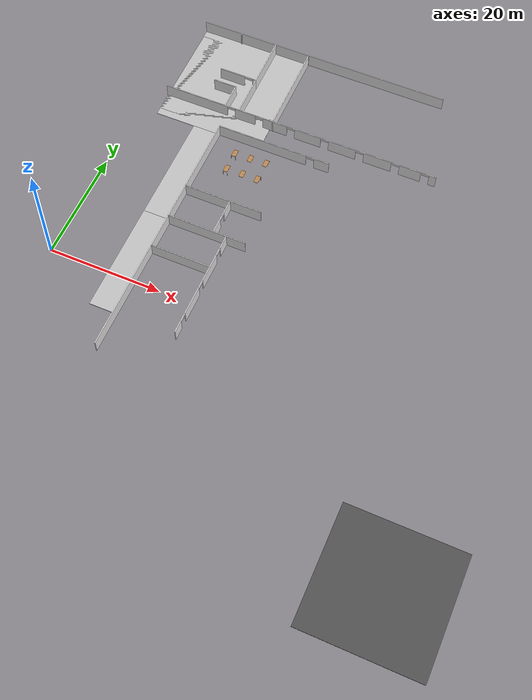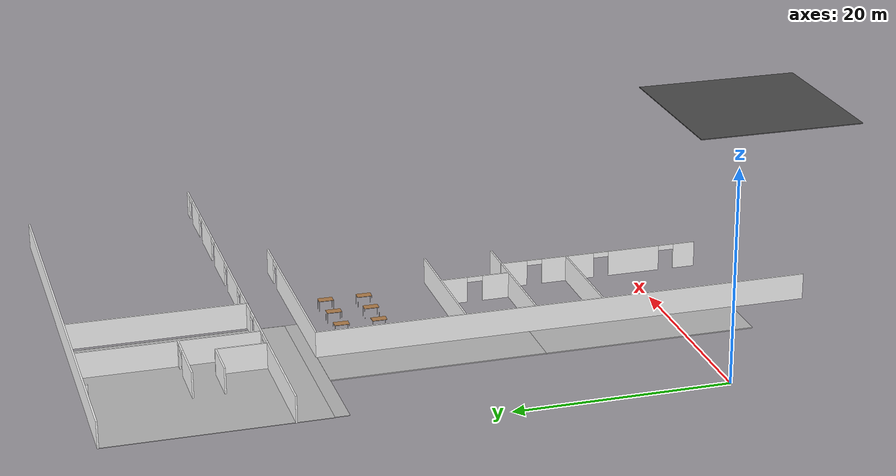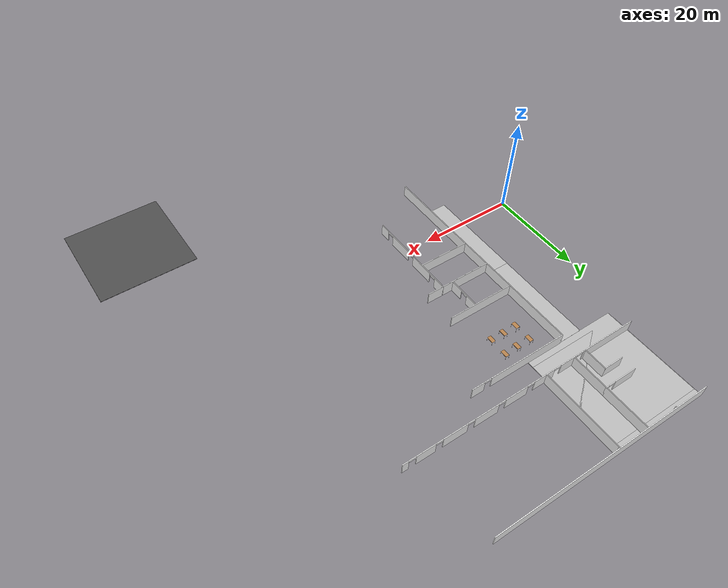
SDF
<sdf version="1.6">
 <world name="default">
  <model name="mainoffice">
   <pose>42.7555 15.4488 0 0 -0 0</pose>
   <link name="Wall_114">
    <pose>-14.0456 22.5815 0 0 -0 0</pose>
    <visual name="Wall_114_Visual_0">
     <pose>-19.5315 0 1.25 0 -0 0</pose>
     <geometry><box><size>11.937 0.15 2.5</size></box></geometry>
     <material>
      <script>
       <uri>model://office_env/materials/scripts</uri>
       <uri>model://office_env/materials/textures</uri>
       <name>wall</name>
      </script>
      <ambient>1 1 1 1</ambient>
     </material>
    </visual>
    <collision name="Wall_114_Collision_0">
     <geometry><box><size>11.937 0.15 2.5</size></box></geometry>
     <pose>-19.5315 0 1.25 0 -0 0</pose>
    </collision>
    <visual name="Wall_114_Visual_1">
     <pose>-10.1461 0 1.25 0 -0 0</pose>
     <geometry><box><size>3.83377 0.15 2.5</size></box></geometry>
     <material>
      <script>
       <uri>model://office_env/materials/scripts</uri>
       <uri>model://office_env/materials/textures</uri>
       <name>wall</name>
      </script>
      <ambient>1 1 1 1</ambient>
     </material>
    </visual>
    <collision name="Wall_114_Collision_1">
     <geometry><box><size>3.83377 0.15 2.5</size></box></geometry>
     <pose>-10.1461 0 1.25 0 -0 0</pose>
    </collision>
    <visual name="Wall_114_Visual_2">
     <pose>-4.44505 0 1.25 0 -0 0</pose>
     <geometry><box><size>4.56834 0.15 2.5</size></box></geometry>
     <material>
      <script>
       <uri>model://office_env/materials/scripts</uri>
       <uri>model://office_env/materials/textures</uri>
       <name>wall</name>
      </script>
      <ambient>1 1 1 1</ambient>
     </material>
    </visual>
    <collision name="Wall_114_Collision_2">
     <geometry><box><size>4.56834 0.15 2.5</size></box></geometry>
     <pose>-4.44505 0 1.25 0 -0 0</pose>
    </collision>
    <visual name="Wall_114_Visual_3">
     <pose>1.7851 0 1.25 0 -0 0</pose>
     <geometry><box><size>4.89198 0.15 2.5</size></box></geometry>
     <material>
      <script>
       <uri>model://office_env/materials/scripts</uri>
       <uri>model://office_env/materials/textures</uri>
       <name>wall</name>
      </script>
      <ambient>1 1 1 1</ambient>
     </material>
    </visual>
    <collision name="Wall_114_Collision_3">
     <geometry><box><size>4.89198 0.15 2.5</size></box></geometry>
     <pose>1.7851 0 1.25 0 -0 0</pose>
    </collision>
    <visual name="Wall_114_Visual_4">
     <pose>8.258 0 1.25 0 -0 0</pose>
     <geometry><box><size>5.0538 0.15 2.5</size></box></geometry>
     <material>
      <script>
       <uri>model://office_env/materials/scripts</uri>
       <uri>model://office_env/materials/textures</uri>
       <name>wall</name>
      </script>
      <ambient>1 1 1 1</ambient>
     </material>
    </visual>
    <collision name="Wall_114_Collision_4">
     <geometry><box><size>5.0538 0.15 2.5</size></box></geometry>
     <pose>8.258 0 1.25 0 -0 0</pose>
    </collision>
    <visual name="Wall_114_Visual_5">
     <pose>14.8201 0 1.25 0 -0 0</pose>
     <geometry><box><size>5.07045 0.15 2.5</size></box></geometry>
     <material>
      <script>
       <uri>model://office_env/materials/scripts</uri>
       <uri>model://office_env/materials/textures</uri>
       <name>wall</name>
      </script>
      <ambient>1 1 1 1</ambient>
     </material>
    </visual>
    <collision name="Wall_114_Collision_5">
     <geometry><box><size>5.07045 0.15 2.5</size></box></geometry>
     <pose>14.8201 0 1.25 0 -0 0</pose>
    </collision>
    <visual name="Wall_114_Visual_6">
     <pose>20.8037 0 1.25 0 -0 0</pose>
     <geometry><box><size>3.89677 0.15 2.5</size></box></geometry>
     <material>
      <script>
       <uri>model://office_env/materials/scripts</uri>
       <uri>model://office_env/materials/textures</uri>
       <name>wall</name>
      </script>
      <ambient>1 1 1 1</ambient>
     </material>
    </visual>
    <collision name="Wall_114_Collision_6">
     <geometry><box><size>3.89677 0.15 2.5</size></box></geometry>
     <pose>20.8037 0 1.25 0 -0 0</pose>
    </collision>
    <visual name="Wall_114_Visual_7">
     <pose>24.8761 0 1.25 0 -0 0</pose>
     <geometry><box><size>1.24787 0.15 2.5</size></box></geometry>
     <material>
      <script>
       <uri>model://office_env/materials/scripts</uri>
       <uri>model://office_env/materials/textures</uri>
       <name>wall</name>
      </script>
      <ambient>1 1 1 1</ambient>
     </material>
    </visual>
    <collision name="Wall_114_Collision_7">
     <geometry><box><size>1.24787 0.15 2.5</size></box></geometry>
     <pose>24.8761 0 1.25 0 -0 0</pose>
    </collision>
    <visual name="Wall_114_Visual_8">
     <pose>-12.813 0 2.25 0 -0 0</pose>
     <geometry><box><size>1.5 0.15 0.5</size></box></geometry>
     <material>
      <script>
       <uri>model://office_env/materials/scripts</uri>
       <uri>model://office_env/materials/textures</uri>
       <name>wall</name>
      </script>
      <ambient>1 1 1 1</ambient>
     </material>
    </visual>
    <collision name="Wall_114_Collision_8">
     <geometry><box><size>1.5 0.15 0.5</size></box></geometry>
     <pose>-12.813 0 2.25 0 -0 0</pose>
    </collision>
    <visual name="Wall_114_Visual_9">
     <pose>-7.47922 0 2.25 0 -0 0</pose>
     <geometry><box><size>1.5 0.15 0.5</size></box></geometry>
     <material>
      <script>
       <uri>model://office_env/materials/scripts</uri>
       <uri>model://office_env/materials/textures</uri>
       <name>wall</name>
      </script>
      <ambient>1 1 1 1</ambient>
     </material>
    </visual>
    <collision name="Wall_114_Collision_9">
     <geometry><box><size>1.5 0.15 0.5</size></box></geometry>
     <pose>-7.47922 0 2.25 0 -0 0</pose>
    </collision>
    <visual name="Wall_114_Visual_10">
     <pose>-1.41089 0 2.25 0 -0 0</pose>
     <geometry><box><size>1.5 0.15 0.5</size></box></geometry>
     <material>
      <script>
       <uri>model://office_env/materials/scripts</uri>
       <uri>model://office_env/materials/textures</uri>
       <name>wall</name>
      </script>
      <ambient>1 1 1 1</ambient>
     </material>
    </visual>
    <collision name="Wall_114_Collision_10">
     <geometry><box><size>1.5 0.15 0.5</size></box></geometry>
     <pose>-1.41089 0 2.25 0 -0 0</pose>
    </collision>
    <visual name="Wall_114_Visual_11">
     <pose>4.98109 0 2.25 0 -0 0</pose>
     <geometry><box><size>1.5 0.15 0.5</size></box></geometry>
     <material>
      <script>
       <uri>model://office_env/materials/scripts</uri>
       <uri>model://office_env/materials/textures</uri>
       <name>wall</name>
      </script>
      <ambient>1 1 1 1</ambient>
     </material>
    </visual>
    <collision name="Wall_114_Collision_11">
     <geometry><box><size>1.5 0.15 0.5</size></box></geometry>
     <pose>4.98109 0 2.25 0 -0 0</pose>
    </collision>
    <visual name="Wall_114_Visual_12">
     <pose>11.5349 0 2.25 0 -0 0</pose>
     <geometry><box><size>1.5 0.15 0.5</size></box></geometry>
     <material>
      <script>
       <uri>model://office_env/materials/scripts</uri>
       <uri>model://office_env/materials/textures</uri>
       <name>wall</name>
      </script>
      <ambient>1 1 1 1</ambient>
     </material>
    </visual>
    <collision name="Wall_114_Collision_12">
     <geometry><box><size>1.5 0.15 0.5</size></box></geometry>
     <pose>11.5349 0 2.25 0 -0 0</pose>
    </collision>
    <visual name="Wall_114_Visual_13">
     <pose>18.1054 0 2.25 0 -0 0</pose>
     <geometry><box><size>1.5 0.15 0.5</size></box></geometry>
     <material>
      <script>
       <uri>model://office_env/materials/scripts</uri>
       <uri>model://office_env/materials/textures</uri>
       <name>wall</name>
      </script>
      <ambient>1 1 1 1</ambient>
     </material>
    </visual>
    <collision name="Wall_114_Collision_13">
     <geometry><box><size>1.5 0.15 0.5</size></box></geometry>
     <pose>18.1054 0 2.25 0 -0 0</pose>
    </collision>
    <visual name="Wall_114_Visual_14">
     <pose>23.5021 0 2.25 0 -0 0</pose>
     <geometry><box><size>1.5 0.15 0.5</size></box></geometry>
     <material>
      <script>
       <uri>model://office_env/materials/scripts</uri>
       <uri>model://office_env/materials/textures</uri>
       <name>wall</name>
      </script>
      <ambient>1 1 1 1</ambient>
     </material>
    </visual>
    <collision name="Wall_114_Collision_14">
     <geometry><box><size>1.5 0.15 0.5</size></box></geometry>
     <pose>23.5021 0 2.25 0 -0 0</pose>
    </collision>
   </link>
   <link name="Wall_125">
    <collision name="Wall_125_Collision">
     <geometry><box><size>4.25 0.15 2.5</size></box></geometry>
     <pose>0 0 1.25 0 -0 0</pose>
    </collision>
    <visual name="Wall_125_Visual">
     <pose>0 0 1.25 0 -0 0</pose>
     <geometry><box><size>4.25 0.15 2.5</size></box></geometry>
     <material>
      <script>
       <uri>model://office_env/materials/scripts</uri>
       <uri>model://office_env/materials/textures</uri>
       <name>wall</name>
      </script>
      <ambient>1 1 1 1</ambient>
     </material>
    </visual>
    <pose>-30.1665 27.2379 0 0 -0 3.14159</pose>
   </link>
   <link name="Wall_128">
    <collision name="Wall_128_Collision">
     <geometry><box><size>0.25 0.15 2.5</size></box></geometry>
     <pose>0 0 1.25 0 -0 0</pose>
    </collision>
    <visual name="Wall_128_Visual">
     <pose>0 0 1.25 0 -0 0</pose>
     <geometry><box><size>0.25 0.15 2.5</size></box></geometry>
     <material>
      <script>
       <uri>model://office_env/materials/scripts</uri>
       <uri>model://office_env/materials/textures</uri>
       <name>wall</name>
      </script>
      <ambient>1 1 1 1</ambient>
     </material>
    </visual>
    <pose>-32.2165 39.1379 0 0 -0 1.5708</pose>
   </link>
   <link name="Wall_130">
    <pose>-28.8573 30.0928 0 0 -0 0</pose>
    <visual name="Wall_130_Visual_0">
     <pose>-1.12067 0 1.25 0 -0 0</pose>
     <geometry><box><size>4.75866 0.15 2.5</size></box></geometry>
     <material>
      <script>
       <uri>model://office_env/materials/scripts</uri>
       <uri>model://office_env/materials/textures</uri>
       <name>wall</name>
      </script>
      <ambient>1 1 1 1</ambient>
     </material>
    </visual>
    <collision name="Wall_130_Collision_0">
     <geometry><box><size>4.75866 0.15 2.5</size></box></geometry>
     <pose>-1.12067 0 1.25 0 -0 0</pose>
    </collision>
    <visual name="Wall_130_Visual_1">
     <pose>3.12933 0 1.25 0 -0 0</pose>
     <geometry><box><size>0.741337 0.15 2.5</size></box></geometry>
     <material>
      <script>
       <uri>model://office_env/materials/scripts</uri>
       <uri>model://office_env/materials/textures</uri>
       <name>wall</name>
      </script>
      <ambient>1 1 1 1</ambient>
     </material>
    </visual>
    <collision name="Wall_130_Collision_1">
     <geometry><box><size>0.741337 0.15 2.5</size></box></geometry>
     <pose>3.12933 0 1.25 0 -0 0</pose>
    </collision>
    <visual name="Wall_130_Visual_2">
     <pose>2.00866 0 2.25 0 -0 0</pose>
     <geometry><box><size>1.5 0.15 0.5</size></box></geometry>
     <material>
      <script>
       <uri>model://office_env/materials/scripts</uri>
       <uri>model://office_env/materials/textures</uri>
       <name>wall</name>
      </script>
      <ambient>1 1 1 1</ambient>
     </material>
    </visual>
    <collision name="Wall_130_Collision_2">
     <geometry><box><size>1.5 0.15 0.5</size></box></geometry>
     <pose>2.00866 0 2.25 0 -0 0</pose>
    </collision>
   </link>
   <link name="Wall_131">
    <collision name="Wall_131_Collision">
     <geometry><box><size>7.5 0.15 2.5</size></box></geometry>
     <pose>0 0 1.25 0 -0 0</pose>
    </collision>
    <visual name="Wall_131_Visual">
     <pose>0 0 1.25 0 -0 0</pose>
     <geometry><box><size>7.5 0.15 2.5</size></box></geometry>
     <material>
      <script>
       <uri>model://office_env/materials/scripts</uri>
       <uri>model://office_env/materials/textures</uri>
       <name>wall</name>
      </script>
      <ambient>1 1 1 1</ambient>
     </material>
    </visual>
    <pose>-25.4323 26.4178 0 0 0 -1.5708</pose>
   </link>
   <link name="Wall_133">
    <collision name="Wall_133_Collision">
     <geometry><box><size>4.75 0.15 2.5</size></box></geometry>
     <pose>0 0 1.25 0 -0 0</pose>
    </collision>
    <visual name="Wall_133_Visual">
     <pose>0 0 1.25 0 -0 0</pose>
     <geometry><box><size>4.75 0.15 2.5</size></box></geometry>
     <material>
      <script>
       <uri>model://office_env/materials/scripts</uri>
       <uri>model://office_env/materials/textures</uri>
       <name>wall</name>
      </script>
      <ambient>1 1 1 1</ambient>
     </material>
    </visual>
    <pose>-28.1164 24.9379 0 0 0 -1.5708</pose>
   </link>
   <link name="Wall_135">
    <collision name="Wall_135_Collision">
     <geometry><box><size>9.25 0.15 2.5</size></box></geometry>
     <pose>0 0 1.25 0 -0 0</pose>
    </collision>
    <visual name="Wall_135_Visual">
     <pose>0 0 1.25 0 -0 0</pose>
     <geometry><box><size>9.25 0.15 2.5</size></box></geometry>
     <material>
      <script>
       <uri>model://office_env/materials/scripts</uri>
       <uri>model://office_env/materials/textures</uri>
       <name>wall</name>
      </script>
      <ambient>1 1 1 1</ambient>
     </material>
    </visual>
    <pose>-25.4323 34.6428 0 0 -0 1.5708</pose>
   </link>
   <link name="Wall_137">
    <collision name="Wall_137_Collision">
     <geometry><box><size>16.75 0.15 2.5</size></box></geometry>
     <pose>0 0 1.25 0 -0 0</pose>
    </collision>
    <visual name="Wall_137_Visual">
     <pose>0 0 1.25 0 -0 0</pose>
     <geometry><box><size>16.75 0.15 2.5</size></box></geometry>
     <material>
      <script>
       <uri>model://office_env/materials/scripts</uri>
       <uri>model://office_env/materials/textures</uri>
       <name>wall</name>
      </script>
      <ambient>1 1 1 1</ambient>
     </material>
    </visual>
    <pose>-18.9193 30.8236 0 0 -0 1.5708</pose>
   </link>
   <link name="Wall_138">
    <collision name="Wall_138_Collision">
     <geometry><box><size>0.25 0.15 2.5</size></box></geometry>
     <pose>0 0 1.25 0 -0 0</pose>
    </collision>
    <visual name="Wall_138_Visual">
     <pose>0 0 1.25 0 -0 0</pose>
     <geometry><box><size>0.25 0.15 2.5</size></box></geometry>
     <material>
      <script>
       <uri>model://office_env/materials/scripts</uri>
       <uri>model://office_env/materials/textures</uri>
       <name>wall</name>
      </script>
      <ambient>1 1 1 1</ambient>
     </material>
    </visual>
    <pose>-18.9193 39.1736 0 0 -0 1.5708</pose>
   </link>
   <link name="Wall_35">
    <collision name="Wall_35_Collision">
     <geometry><box><size>47.25 0.15 2.5</size></box></geometry>
     <pose>0 0 1.25 0 -0 0</pose>
    </collision>
    <visual name="Wall_35_Visual">
     <pose>0 0 1.25 0 -0 0</pose>
     <geometry><box><size>47.25 0.15 2.5</size></box></geometry>
     <material>
      <script>
       <uri>model://office_env/materials/scripts</uri>
       <uri>model://office_env/materials/textures</uri>
       <name>wall</name>
      </script>
      <ambient>1 1 1 1</ambient>
     </material>
    </visual>
    <pose>-27.0991 -5.575 0 0 -0 1.5708</pose>
   </link>
   <link name="Wall_38">
    <collision name="Wall_38_Collision">
     <geometry><box><size>46.5 0.15 2.5</size></box></geometry>
     <pose>0 0 1.25 0 -0 0</pose>
    </collision>
    <visual name="Wall_38_Visual">
     <pose>0 0 1.25 0 -0 0</pose>
     <geometry><box><size>46.5 0.15 2.5</size></box></geometry>
     <material>
      <script>
       <uri>model://office_env/materials/scripts</uri>
       <uri>model://office_env/materials/textures</uri>
       <name>wall</name>
      </script>
      <ambient>1 1 1 1</ambient>
     </material>
    </visual>
    <pose>-16.2741 39.325 0 0 -0 0</pose>
   </link>
   <link name="Wall_62">
    <pose>-16.4491 -12.475 0 0 -0 1.5708</pose>
    <visual name="Wall_62_Visual_0">
     <pose>-8.77826 0 1.25 0 -0 0</pose>
     <geometry><box><size>2.19348 0.15 2.5</size></box></geometry>
     <material>
      <script>
       <uri>model://office_env/materials/scripts</uri>
       <uri>model://office_env/materials/textures</uri>
       <name>wall</name>
      </script>
      <ambient>1 1 1 1</ambient>
     </material>
    </visual>
    <collision name="Wall_62_Collision_0">
     <geometry><box><size>2.19348 0.15 2.5</size></box></geometry>
     <pose>-8.77826 0 1.25 0 -0 0</pose>
    </collision>
    <visual name="Wall_62_Visual_1">
     <pose>-3.59393 0 1.25 0 -0 0</pose>
     <geometry><box><size>5.17517 0.15 2.5</size></box></geometry>
     <material>
      <script>
       <uri>model://office_env/materials/scripts</uri>
       <uri>model://office_env/materials/textures</uri>
       <name>wall</name>
      </script>
      <ambient>1 1 1 1</ambient>
     </material>
    </visual>
    <collision name="Wall_62_Collision_1">
     <geometry><box><size>5.17517 0.15 2.5</size></box></geometry>
     <pose>-3.59393 0 1.25 0 -0 0</pose>
    </collision>
    <visual name="Wall_62_Visual_2">
     <pose>3.1331 0 1.25 0 -0 0</pose>
     <geometry><box><size>5.27889 0.15 2.5</size></box></geometry>
     <material>
      <script>
       <uri>model://office_env/materials/scripts</uri>
       <uri>model://office_env/materials/textures</uri>
       <name>wall</name>
      </script>
      <ambient>1 1 1 1</ambient>
     </material>
    </visual>
    <collision name="Wall_62_Collision_2">
     <geometry><box><size>5.27889 0.15 2.5</size></box></geometry>
     <pose>3.1331 0 1.25 0 -0 0</pose>
    </collision>
    <visual name="Wall_62_Visual_3">
     <pose>8.57377 0 1.25 0 -0 0</pose>
     <geometry><box><size>2.60246 0.15 2.5</size></box></geometry>
     <material>
      <script>
       <uri>model://office_env/materials/scripts</uri>
       <uri>model://office_env/materials/textures</uri>
       <name>wall</name>
      </script>
      <ambient>1 1 1 1</ambient>
     </material>
    </visual>
    <collision name="Wall_62_Collision_3">
     <geometry><box><size>2.60246 0.15 2.5</size></box></geometry>
     <pose>8.57377 0 1.25 0 -0 0</pose>
    </collision>
    <visual name="Wall_62_Visual_4">
     <pose>-6.93152 0 2.25 0 -0 0</pose>
     <geometry><box><size>1.5 0.15 0.5</size></box></geometry>
     <material>
      <script>
       <uri>model://office_env/materials/scripts</uri>
       <uri>model://office_env/materials/textures</uri>
       <name>wall</name>
      </script>
      <ambient>1 1 1 1</ambient>
     </material>
    </visual>
    <collision name="Wall_62_Collision_4">
     <geometry><box><size>1.5 0.15 0.5</size></box></geometry>
     <pose>-6.93152 0 2.25 0 -0 0</pose>
    </collision>
    <visual name="Wall_62_Visual_5">
     <pose>-0.256349 0 2.25 0 -0 0</pose>
     <geometry><box><size>1.5 0.15 0.5</size></box></geometry>
     <material>
      <script>
       <uri>model://office_env/materials/scripts</uri>
       <uri>model://office_env/materials/textures</uri>
       <name>wall</name>
      </script>
      <ambient>1 1 1 1</ambient>
     </material>
    </visual>
    <collision name="Wall_62_Collision_5">
     <geometry><box><size>1.5 0.15 0.5</size></box></geometry>
     <pose>-0.256349 0 2.25 0 -0 0</pose>
    </collision>
    <visual name="Wall_62_Visual_6">
     <pose>6.52254 0 2.25 0 -0 0</pose>
     <geometry><box><size>1.5 0.15 0.5</size></box></geometry>
     <material>
      <script>
       <uri>model://office_env/materials/scripts</uri>
       <uri>model://office_env/materials/textures</uri>
       <name>wall</name>
      </script>
      <ambient>1 1 1 1</ambient>
     </material>
    </visual>
    <collision name="Wall_62_Collision_6">
     <geometry><box><size>1.5 0.15 0.5</size></box></geometry>
     <pose>6.52254 0 2.25 0 -0 0</pose>
    </collision>
   </link>
   <link name="Wall_63">
    <collision name="Wall_63_Collision">
     <geometry><box><size>10.75 0.15 2.5</size></box></geometry>
     <pose>0 0 1.25 0 -0 0</pose>
    </collision>
    <visual name="Wall_63_Visual">
     <pose>0 0 1.25 0 -0 0</pose>
     <geometry><box><size>10.75 0.15 2.5</size></box></geometry>
     <material>
      <script>
       <uri>model://office_env/materials/scripts</uri>
       <uri>model://office_env/materials/textures</uri>
       <name>wall</name>
      </script>
      <ambient>1 1 1 1</ambient>
     </material>
    </visual>
    <pose>-21.7491 -2.675 0 0 -0 3.14159</pose>
   </link>
   <link name="Wall_71">
    <collision name="Wall_71_Collision">
     <geometry><box><size>10.75 0.15 2.5</size></box></geometry>
     <pose>0 0 1.25 0 -0 0</pose>
    </collision>
    <visual name="Wall_71_Visual">
     <pose>0 0 1.25 0 -0 0</pose>
     <geometry><box><size>10.75 0.15 2.5</size></box></geometry>
     <material>
      <script>
       <uri>model://office_env/materials/scripts</uri>
       <uri>model://office_env/materials/textures</uri>
       <name>wall</name>
      </script>
      <ambient>1 1 1 1</ambient>
     </material>
    </visual>
    <pose>-21.7518 -9.17769 0 0 -0 3.14159</pose>
   </link>
   <link name="Wall_75">
    <pose>-16.7991 17.975 0 0 -0 0</pose>
    <visual name="Wall_75_Visual_0">
     <pose>-2.1273 0 1.25 0 -0 0</pose>
     <geometry><box><size>16.4954 0.15 2.5</size></box></geometry>
     <material>
      <script>
       <uri>model://office_env/materials/scripts</uri>
       <uri>model://office_env/materials/textures</uri>
       <name>wall</name>
      </script>
      <ambient>1 1 1 1</ambient>
     </material>
    </visual>
    <collision name="Wall_75_Collision_0">
     <geometry><box><size>16.4954 0.15 2.5</size></box></geometry>
     <pose>-2.1273 0 1.25 0 -0 0</pose>
    </collision>
    <visual name="Wall_75_Visual_1">
     <pose>8.9977 0 1.25 0 -0 0</pose>
     <geometry><box><size>2.7546 0.15 2.5</size></box></geometry>
     <material>
      <script>
       <uri>model://office_env/materials/scripts</uri>
       <uri>model://office_env/materials/textures</uri>
       <name>wall</name>
      </script>
      <ambient>1 1 1 1</ambient>
     </material>
    </visual>
    <collision name="Wall_75_Collision_1">
     <geometry><box><size>2.7546 0.15 2.5</size></box></geometry>
     <pose>8.9977 0 1.25 0 -0 0</pose>
    </collision>
    <visual name="Wall_75_Visual_2">
     <pose>6.8704 0 2.25 0 -0 0</pose>
     <geometry><box><size>1.5 0.15 0.5</size></box></geometry>
     <material>
      <script>
       <uri>model://office_env/materials/scripts</uri>
       <uri>model://office_env/materials/textures</uri>
       <name>wall</name>
      </script>
      <ambient>1 1 1 1</ambient>
     </material>
    </visual>
    <collision name="Wall_75_Collision_2">
     <geometry><box><size>1.5 0.15 0.5</size></box></geometry>
     <pose>6.8704 0 2.25 0 -0 0</pose>
    </collision>
   </link>
   <link name="Wall_85">
    <collision name="Wall_85_Collision">
     <geometry><box><size>3.5 0.15 2.5</size></box></geometry>
     <pose>0 0 1.25 0 -0 0</pose>
    </collision>
    <visual name="Wall_85_Visual">
     <pose>0 0 1.25 0 -0 0</pose>
     <geometry><box><size>3.5 0.15 2.5</size></box></geometry>
     <material>
      <script>
       <uri>model://office_env/materials/scripts</uri>
       <uri>model://office_env/materials/textures</uri>
       <name>wall</name>
      </script>
      <ambient>1 1 1 1</ambient>
     </material>
    </visual>
    <pose>-14.7741 -2.675 0 0 -0 0</pose>
   </link>
   <link name="Wall_88">
    <collision name="Wall_88_Collision">
     <geometry><box><size>14 0.15 2.5</size></box></geometry>
     <pose>0 0 1.25 0 -0 0</pose>
    </collision>
    <visual name="Wall_88_Visual">
     <pose>0 0 1.25 0 -0 0</pose>
     <geometry><box><size>14 0.15 2.5</size></box></geometry>
     <material>
      <script>
       <uri>model://office_env/materials/scripts</uri>
       <uri>model://office_env/materials/textures</uri>
       <name>wall</name>
      </script>
      <ambient>1 1 1 1</ambient>
     </material>
    </visual>
    <pose>-20.1147 4.02546 0 0 -0 3.14159</pose>
   </link>
   <link name="Wall_90">
    <pose>-18.7887 0.663928 0 0 0 -1.5708</pose>
    <visual name="Wall_90_Visual_0">
     <pose>-2.08201 0 1.25 0 -0 0</pose>
     <geometry><box><size>2.58598 0.15 2.5</size></box></geometry>
     <material>
      <script>
       <uri>model://office_env/materials/scripts</uri>
       <uri>model://office_env/materials/textures</uri>
       <name>wall</name>
      </script>
      <ambient>1 1 1 1</ambient>
     </material>
    </visual>
    <collision name="Wall_90_Collision_0">
     <geometry><box><size>2.58598 0.15 2.5</size></box></geometry>
     <pose>-2.08201 0 1.25 0 -0 0</pose>
    </collision>
    <visual name="Wall_90_Visual_1">
     <pose>2.04299 0 1.25 0 -0 0</pose>
     <geometry><box><size>2.66402 0.15 2.5</size></box></geometry>
     <material>
      <script>
       <uri>model://office_env/materials/scripts</uri>
       <uri>model://office_env/materials/textures</uri>
       <name>wall</name>
      </script>
      <ambient>1 1 1 1</ambient>
     </material>
    </visual>
    <collision name="Wall_90_Collision_1">
     <geometry><box><size>2.66402 0.15 2.5</size></box></geometry>
     <pose>2.04299 0 1.25 0 -0 0</pose>
    </collision>
    <visual name="Wall_90_Visual_2">
     <pose>-0.039023 0 2.25 0 -0 0</pose>
     <geometry><box><size>1.5 0.15 0.5</size></box></geometry>
     <material>
      <script>
       <uri>model://office_env/materials/scripts</uri>
       <uri>model://office_env/materials/textures</uri>
       <name>wall</name>
      </script>
      <ambient>1 1 1 1</ambient>
     </material>
    </visual>
    <collision name="Wall_90_Collision_2">
     <geometry><box><size>1.5 0.15 0.5</size></box></geometry>
     <pose>-0.039023 0 2.25 0 -0 0</pose>
    </collision>
   </link>
   <static>1</static>
  </model>
  <model name="asphalt_plane">
   <static>1</static>
   <link name="link">
    <collision name="collision"><geometry><box><size>20 20 0.1</size></box></geometry></collision>
    <visual name="visual">
     <cast_shadows>0</cast_shadows>
     <geometry><box><size>20 20 0.1</size></box></geometry>
     <material>
      <script>
       <uri>model://asphalt_plane/materials/scripts</uri>
       <uri>model://asphalt_plane/materials/textures</uri>
       <name>vrc/asphalt</name>
      </script>
     </material>
    </visual>
   </link>
   <pose>70.7475 -31.5972 0 0 -0 0</pose>
  </model>
  <model name="table_3">
   <static>0</static>
   <link name="link">
    <collision name="surface">
     <pose>0 0 1 0 -0 0</pose>
     <geometry><box><size>1.5 0.8 0.03</size></box></geometry>
     <surface><friction><ode><mu>0.6</mu><mu2>0.6</mu2></ode></friction></surface>
    </collision>
    <visual name="visual1">
     <pose>0 0 1 0 -0 0</pose>
     <geometry><box><size>1.4 0.8 0.04</size></box></geometry>
     <material>
      <script><uri>file://media/materials/scripts/gazebo.material</uri><name>Gazebo/Wood</name></script>
     </material>
    </visual>
    <collision name="front_left_leg">
     <pose>0.68 0.38 0.5 0 -0 0</pose>
     <geometry><cylinder><radius>0.02</radius><length>1</length></cylinder></geometry>
    </collision>
    <visual name="front_left_leg">
     <pose>0.68 0.38 0.5 0 -0 0</pose>
     <geometry><cylinder><radius>0.02</radius><length>1</length></cylinder></geometry>
     <material>
      <script>
       <uri>model://office_env/materials/scripts</uri>
       <uri>model://office_env/materials/textures</uri>
       <name>wall</name>
      </script>
     </material>
    </visual>
    <collision name="front_right_leg">
     <pose>0.68 -0.38 0.5 0 -0 0</pose>
     <geometry><cylinder><radius>0.02</radius><length>1</length></cylinder></geometry>
    </collision>
    <visual name="front_right_leg">
     <pose>0.68 -0.38 0.5 0 -0 0</pose>
     <geometry><cylinder><radius>0.02</radius><length>1</length></cylinder></geometry>
     <material>
      <script>
       <uri>model://office_env/materials/scripts</uri>
       <uri>model://office_env/materials/textures</uri>
       <name>wall</name>
      </script>
     </material>
    </visual>
    <collision name="back_right_leg">
     <pose>-0.68 -0.38 0.5 0 -0 0</pose>
     <geometry><cylinder><radius>0.02</radius><length>1</length></cylinder></geometry>
    </collision>
    <visual name="back_right_leg">
     <pose>-0.68 -0.38 0.5 0 -0 0</pose>
     <geometry><cylinder><radius>0.02</radius><length>1</length></cylinder></geometry>
     <material>
      <script>
       <uri>model://office_env/materials/scripts</uri>
       <uri>model://office_env/materials/textures</uri>
       <name>wall</name>
      </script>
     </material>
    </visual>
    <collision name="back_left_leg">
     <pose>-0.68 0.38 0.5 0 -0 0</pose>
     <geometry><cylinder><radius>0.02</radius><length>1</length></cylinder></geometry>
    </collision>
    <visual name="back_left_leg">
     <pose>-0.68 0.38 0.5 0 -0 0</pose>
     <geometry><cylinder><radius>0.02</radius><length>1</length></cylinder></geometry>
     <material>
      <script>
       <uri>model://office_env/materials/scripts</uri>
       <uri>model://office_env/materials/textures</uri>
       <name>wall</name>
      </script>
     </material>
    </visual>
    <inertial>
     <inertia><ixx>1</ixx><ixy>0</ixy><ixz>0</ixz><iyy>1</iyy><iyz>0</iyz><izz>1</izz></inertia>
     <mass>1</mass>
    </inertial>
   </link>
   <pose>20.1295 30.0365 0.034999 0 0 -1.58064</pose>
  </model>
  <model name="table_3_clone">
   <static>0</static>
   <link name="link">
    <collision name="surface">
     <pose>0 0 1 0 -0 0</pose>
     <geometry><box><size>1.5 0.8 0.03</size></box></geometry>
     <surface><friction><ode><mu>0.6</mu><mu2>0.6</mu2></ode></friction></surface>
    </collision>
    <visual name="visual1">
     <pose>0 0 1 0 -0 0</pose>
     <geometry><box><size>1.4 0.8 0.04</size></box></geometry>
     <material>
      <script><uri>file://media/materials/scripts/gazebo.material</uri><name>Gazebo/Wood</name></script>
     </material>
    </visual>
    <collision name="front_left_leg">
     <pose>0.68 0.38 0.5 0 -0 0</pose>
     <geometry><cylinder><radius>0.02</radius><length>1</length></cylinder></geometry>
    </collision>
    <visual name="front_left_leg">
     <pose>0.68 0.38 0.5 0 -0 0</pose>
     <geometry><cylinder><radius>0.02</radius><length>1</length></cylinder></geometry>
     <material>
      <script>
       <uri>model://office_env/materials/scripts</uri>
       <uri>model://office_env/materials/textures</uri>
       <name>wall</name>
      </script>
     </material>
    </visual>
    <collision name="front_right_leg">
     <pose>0.68 -0.38 0.5 0 -0 0</pose>
     <geometry><cylinder><radius>0.02</radius><length>1</length></cylinder></geometry>
    </collision>
    <visual name="front_right_leg">
     <pose>0.68 -0.38 0.5 0 -0 0</pose>
     <geometry><cylinder><radius>0.02</radius><length>1</length></cylinder></geometry>
     <material>
      <script>
       <uri>model://office_env/materials/scripts</uri>
       <uri>model://office_env/materials/textures</uri>
       <name>wall</name>
      </script>
     </material>
    </visual>
    <collision name="back_right_leg">
     <pose>-0.68 -0.38 0.5 0 -0 0</pose>
     <geometry><cylinder><radius>0.02</radius><length>1</length></cylinder></geometry>
    </collision>
    <visual name="back_right_leg">
     <pose>-0.68 -0.38 0.5 0 -0 0</pose>
     <geometry><cylinder><radius>0.02</radius><length>1</length></cylinder></geometry>
     <material>
      <script>
       <uri>model://office_env/materials/scripts</uri>
       <uri>model://office_env/materials/textures</uri>
       <name>wall</name>
      </script>
     </material>
    </visual>
    <collision name="back_left_leg">
     <pose>-0.68 0.38 0.5 0 -0 0</pose>
     <geometry><cylinder><radius>0.02</radius><length>1</length></cylinder></geometry>
    </collision>
    <visual name="back_left_leg">
     <pose>-0.68 0.38 0.5 0 -0 0</pose>
     <geometry><cylinder><radius>0.02</radius><length>1</length></cylinder></geometry>
     <material>
      <script>
       <uri>model://office_env/materials/scripts</uri>
       <uri>model://office_env/materials/textures</uri>
       <name>wall</name>
      </script>
     </material>
    </visual>
    <inertial>
     <inertia><ixx>1</ixx><ixy>0</ixy><ixz>0</ixz><iyy>1</iyy><iyz>0</iyz><izz>1</izz></inertia>
     <mass>1</mass>
    </inertial>
   </link>
   <pose>20.1673 26.4749 0.034999 0 0 -1.58064</pose>
  </model>
  <model name="table_3_clone_clone_clone_0">
   <static>0</static>
   <link name="link">
    <collision name="surface">
     <pose>0 0 1 0 -0 0</pose>
     <geometry><box><size>1.5 0.8 0.03</size></box></geometry>
     <surface><friction><ode><mu>0.6</mu><mu2>0.6</mu2></ode></friction></surface>
    </collision>
    <visual name="visual1">
     <pose>0 0 1 0 -0 0</pose>
     <geometry><box><size>1.4 0.8 0.04</size></box></geometry>
     <material>
      <script><uri>file://media/materials/scripts/gazebo.material</uri><name>Gazebo/Wood</name></script>
     </material>
    </visual>
    <collision name="front_left_leg">
     <pose>0.68 0.38 0.5 0 -0 0</pose>
     <geometry><cylinder><radius>0.02</radius><length>1</length></cylinder></geometry>
    </collision>
    <visual name="front_left_leg">
     <pose>0.68 0.38 0.5 0 -0 0</pose>
     <geometry><cylinder><radius>0.02</radius><length>1</length></cylinder></geometry>
     <material>
      <script>
       <uri>model://office_env/materials/scripts</uri>
       <uri>model://office_env/materials/textures</uri>
       <name>wall</name>
      </script>
     </material>
    </visual>
    <collision name="front_right_leg">
     <pose>0.68 -0.38 0.5 0 -0 0</pose>
     <geometry><cylinder><radius>0.02</radius><length>1</length></cylinder></geometry>
    </collision>
    <visual name="front_right_leg">
     <pose>0.68 -0.38 0.5 0 -0 0</pose>
     <geometry><cylinder><radius>0.02</radius><length>1</length></cylinder></geometry>
     <material>
      <script>
       <uri>model://office_env/materials/scripts</uri>
       <uri>model://office_env/materials/textures</uri>
       <name>wall</name>
      </script>
     </material>
    </visual>
    <collision name="back_right_leg">
     <pose>-0.68 -0.38 0.5 0 -0 0</pose>
     <geometry><cylinder><radius>0.02</radius><length>1</length></cylinder></geometry>
    </collision>
    <visual name="back_right_leg">
     <pose>-0.68 -0.38 0.5 0 -0 0</pose>
     <geometry><cylinder><radius>0.02</radius><length>1</length></cylinder></geometry>
     <material>
      <script>
       <uri>model://office_env/materials/scripts</uri>
       <uri>model://office_env/materials/textures</uri>
       <name>wall</name>
      </script>
     </material>
    </visual>
    <collision name="back_left_leg">
     <pose>-0.68 0.38 0.5 0 -0 0</pose>
     <geometry><cylinder><radius>0.02</radius><length>1</length></cylinder></geometry>
    </collision>
    <visual name="back_left_leg">
     <pose>-0.68 0.38 0.5 0 -0 0</pose>
     <geometry><cylinder><radius>0.02</radius><length>1</length></cylinder></geometry>
     <material>
      <script>
       <uri>model://office_env/materials/scripts</uri>
       <uri>model://office_env/materials/textures</uri>
       <name>wall</name>
      </script>
     </material>
    </visual>
    <inertial>
     <inertia><ixx>1</ixx><ixy>0</ixy><ixz>0</ixz><iyy>1</iyy><iyz>0</iyz><izz>1</izz></inertia>
     <mass>1</mass>
    </inertial>
   </link>
   <pose>23.1004 26.4884 0.034999 0 0 -1.58064</pose>
  </model>
  <model name="table_3_clone_clone_clone_1">
   <static>0</static>
   <link name="link">
    <collision name="surface">
     <pose>0 0 1 0 -0 0</pose>
     <geometry><box><size>1.5 0.8 0.03</size></box></geometry>
     <surface><friction><ode><mu>0.6</mu><mu2>0.6</mu2></ode></friction></surface>
    </collision>
    <visual name="visual1">
     <pose>0 0 1 0 -0 0</pose>
     <geometry><box><size>1.4 0.8 0.04</size></box></geometry>
     <material>
      <script><uri>file://media/materials/scripts/gazebo.material</uri><name>Gazebo/Wood</name></script>
     </material>
    </visual>
    <collision name="front_left_leg">
     <pose>0.68 0.38 0.5 0 -0 0</pose>
     <geometry><cylinder><radius>0.02</radius><length>1</length></cylinder></geometry>
    </collision>
    <visual name="front_left_leg">
     <pose>0.68 0.38 0.5 0 -0 0</pose>
     <geometry><cylinder><radius>0.02</radius><length>1</length></cylinder></geometry>
     <material>
      <script>
       <uri>model://office_env/materials/scripts</uri>
       <uri>model://office_env/materials/textures</uri>
       <name>wall</name>
      </script>
     </material>
    </visual>
    <collision name="front_right_leg">
     <pose>0.68 -0.38 0.5 0 -0 0</pose>
     <geometry><cylinder><radius>0.02</radius><length>1</length></cylinder></geometry>
    </collision>
    <visual name="front_right_leg">
     <pose>0.68 -0.38 0.5 0 -0 0</pose>
     <geometry><cylinder><radius>0.02</radius><length>1</length></cylinder></geometry>
     <material>
      <script>
       <uri>model://office_env/materials/scripts</uri>
       <uri>model://office_env/materials/textures</uri>
       <name>wall</name>
      </script>
     </material>
    </visual>
    <collision name="back_right_leg">
     <pose>-0.68 -0.38 0.5 0 -0 0</pose>
     <geometry><cylinder><radius>0.02</radius><length>1</length></cylinder></geometry>
    </collision>
    <visual name="back_right_leg">
     <pose>-0.68 -0.38 0.5 0 -0 0</pose>
     <geometry><cylinder><radius>0.02</radius><length>1</length></cylinder></geometry>
     <material>
      <script>
       <uri>model://office_env/materials/scripts</uri>
       <uri>model://office_env/materials/textures</uri>
       <name>wall</name>
      </script>
     </material>
    </visual>
    <collision name="back_left_leg">
     <pose>-0.68 0.38 0.5 0 -0 0</pose>
     <geometry><cylinder><radius>0.02</radius><length>1</length></cylinder></geometry>
    </collision>
    <visual name="back_left_leg">
     <pose>-0.68 0.38 0.5 0 -0 0</pose>
     <geometry><cylinder><radius>0.02</radius><length>1</length></cylinder></geometry>
     <material>
      <script>
       <uri>model://office_env/materials/scripts</uri>
       <uri>model://office_env/materials/textures</uri>
       <name>wall</name>
      </script>
     </material>
    </visual>
    <inertial>
     <inertia><ixx>1</ixx><ixy>0</ixy><ixz>0</ixz><iyy>1</iyy><iyz>0</iyz><izz>1</izz></inertia>
     <mass>1</mass>
    </inertial>
   </link>
   <pose>23.0792 30.0448 0.034999 0 0 -1.58064</pose>
  </model>
  <model name="table_3_clone_clone_clone_3">
   <static>0</static>
   <link name="link">
    <collision name="surface">
     <pose>0 0 1 0 -0 0</pose>
     <geometry><box><size>1.5 0.8 0.03</size></box></geometry>
     <surface><friction><ode><mu>0.6</mu><mu2>0.6</mu2></ode></friction></surface>
    </collision>
    <visual name="visual1">
     <pose>0 0 1 0 -0 0</pose>
     <geometry><box><size>1.4 0.8 0.04</size></box></geometry>
     <material>
      <script><uri>file://media/materials/scripts/gazebo.material</uri><name>Gazebo/Wood</name></script>
     </material>
    </visual>
    <collision name="front_left_leg">
     <pose>0.68 0.38 0.5 0 -0 0</pose>
     <geometry><cylinder><radius>0.02</radius><length>1</length></cylinder></geometry>
    </collision>
    <visual name="front_left_leg">
     <pose>0.68 0.38 0.5 0 -0 0</pose>
     <geometry><cylinder><radius>0.02</radius><length>1</length></cylinder></geometry>
     <material>
      <script>
       <uri>model://office_env/materials/scripts</uri>
       <uri>model://office_env/materials/textures</uri>
       <name>wall</name>
      </script>
     </material>
    </visual>
    <collision name="front_right_leg">
     <pose>0.68 -0.38 0.5 0 -0 0</pose>
     <geometry><cylinder><radius>0.02</radius><length>1</length></cylinder></geometry>
    </collision>
    <visual name="front_right_leg">
     <pose>0.68 -0.38 0.5 0 -0 0</pose>
     <geometry><cylinder><radius>0.02</radius><length>1</length></cylinder></geometry>
     <material>
      <script>
       <uri>model://office_env/materials/scripts</uri>
       <uri>model://office_env/materials/textures</uri>
       <name>wall</name>
      </script>
     </material>
    </visual>
    <collision name="back_right_leg">
     <pose>-0.68 -0.38 0.5 0 -0 0</pose>
     <geometry><cylinder><radius>0.02</radius><length>1</length></cylinder></geometry>
    </collision>
    <visual name="back_right_leg">
     <pose>-0.68 -0.38 0.5 0 -0 0</pose>
     <geometry><cylinder><radius>0.02</radius><length>1</length></cylinder></geometry>
     <material>
      <script>
       <uri>model://office_env/materials/scripts</uri>
       <uri>model://office_env/materials/textures</uri>
       <name>wall</name>
      </script>
     </material>
    </visual>
    <collision name="back_left_leg">
     <pose>-0.68 0.38 0.5 0 -0 0</pose>
     <geometry><cylinder><radius>0.02</radius><length>1</length></cylinder></geometry>
    </collision>
    <visual name="back_left_leg">
     <pose>-0.68 0.38 0.5 0 -0 0</pose>
     <geometry><cylinder><radius>0.02</radius><length>1</length></cylinder></geometry>
     <material>
      <script>
       <uri>model://office_env/materials/scripts</uri>
       <uri>model://office_env/materials/textures</uri>
       <name>wall</name>
      </script>
     </material>
    </visual>
    <inertial>
     <inertia><ixx>1</ixx><ixy>0</ixy><ixz>0</ixz><iyy>1</iyy><iyz>0</iyz><izz>1</izz></inertia>
     <mass>1</mass>
    </inertial>
   </link>
   <pose>25.9264 26.4512 0.034999 0 0 -1.58064</pose>
  </model>
  <model name="table_3_clone_clone_clone_4">
   <static>0</static>
   <link name="link">
    <collision name="surface">
     <pose>0 0 1 0 -0 0</pose>
     <geometry><box><size>1.5 0.8 0.03</size></box></geometry>
     <surface><friction><ode><mu>0.6</mu><mu2>0.6</mu2></ode></friction></surface>
    </collision>
    <visual name="visual1">
     <pose>0 0 1 0 -0 0</pose>
     <geometry><box><size>1.4 0.8 0.04</size></box></geometry>
     <material>
      <script><uri>file://media/materials/scripts/gazebo.material</uri><name>Gazebo/Wood</name></script>
     </material>
    </visual>
    <collision name="front_left_leg">
     <pose>0.68 0.38 0.5 0 -0 0</pose>
     <geometry><cylinder><radius>0.02</radius><length>1</length></cylinder></geometry>
    </collision>
    <visual name="front_left_leg">
     <pose>0.68 0.38 0.5 0 -0 0</pose>
     <geometry><cylinder><radius>0.02</radius><length>1</length></cylinder></geometry>
     <material>
      <script>
       <uri>model://office_env/materials/scripts</uri>
       <uri>model://office_env/materials/textures</uri>
       <name>wall</name>
      </script>
     </material>
    </visual>
    <collision name="front_right_leg">
     <pose>0.68 -0.38 0.5 0 -0 0</pose>
     <geometry><cylinder><radius>0.02</radius><length>1</length></cylinder></geometry>
    </collision>
    <visual name="front_right_leg">
     <pose>0.68 -0.38 0.5 0 -0 0</pose>
     <geometry><cylinder><radius>0.02</radius><length>1</length></cylinder></geometry>
     <material>
      <script>
       <uri>model://office_env/materials/scripts</uri>
       <uri>model://office_env/materials/textures</uri>
       <name>wall</name>
      </script>
     </material>
    </visual>
    <collision name="back_right_leg">
     <pose>-0.68 -0.38 0.5 0 -0 0</pose>
     <geometry><cylinder><radius>0.02</radius><length>1</length></cylinder></geometry>
    </collision>
    <visual name="back_right_leg">
     <pose>-0.68 -0.38 0.5 0 -0 0</pose>
     <geometry><cylinder><radius>0.02</radius><length>1</length></cylinder></geometry>
     <material>
      <script>
       <uri>model://office_env/materials/scripts</uri>
       <uri>model://office_env/materials/textures</uri>
       <name>wall</name>
      </script>
     </material>
    </visual>
    <collision name="back_left_leg">
     <pose>-0.68 0.38 0.5 0 -0 0</pose>
     <geometry><cylinder><radius>0.02</radius><length>1</length></cylinder></geometry>
    </collision>
    <visual name="back_left_leg">
     <pose>-0.68 0.38 0.5 0 -0 0</pose>
     <geometry><cylinder><radius>0.02</radius><length>1</length></cylinder></geometry>
     <material>
      <script>
       <uri>model://office_env/materials/scripts</uri>
       <uri>model://office_env/materials/textures</uri>
       <name>wall</name>
      </script>
     </material>
    </visual>
    <inertial>
     <inertia><ixx>1</ixx><ixy>0</ixy><ixz>0</ixz><iyy>1</iyy><iyz>0</iyz><izz>1</izz></inertia>
     <mass>1</mass>
    </inertial>
   </link>
   <pose>25.9412 30.1477 0.034999 0 0 -1.58064</pose>
  </model>
  <model name="Floor_50">
   <link name="main">
    <pose>0 0 0.01 0 -0 0</pose>
    <collision name="main_Collision"><geometry><box><size>20 20 0.05</size></box></geometry></collision>
    <visual name="main_Visual">
     <geometry><box><size>20 20 0.05</size></box></geometry>
     <material>
      <script>
       <uri>model://Floor_medium/materials/scripts</uri>
       <uri>model://Floor_medium/materials/textures</uri>
       <name>floor</name>
      </script>
     </material>
    </visual>
   </link>
   <static>1</static>
   <pose>13.27 44.6882 0 0 -0 0</pose>
  </model>
  <model name="Floor_51">
   <link name="main">
    <pose>0 0 0.01 0 -0 0</pose>
    <collision name="main_Collision"><geometry><box><size>20 20 0.05</size></box></geometry></collision>
    <visual name="main_Visual">
     <geometry><box><size>20 20 0.05</size></box></geometry>
     <material>
      <script>
       <uri>model://Floor_medium/materials/scripts</uri>
       <uri>model://Floor_medium/materials/textures</uri>
       <name>floor</name>
      </script>
     </material>
    </visual>
   </link>
   <static>1</static>
   <pose>13.3202 43.3668 0 0 -0 0</pose>
  </model>
  <model name="outdoor_plane_18">
   <static>1</static>
   <link name="link">
    <collision name="collision"><geometry><box><size>5 20 0.1</size></box></geometry></collision>
    <visual name="visual">
     <cast_shadows>0</cast_shadows>
     <geometry><box><size>5 20 0.1</size></box></geometry>
     <material>
      <script>
       <uri>model://outdoor_plane/materials/scripts</uri>
       <uri>model://outdoor_plane/materials/textures</uri>
       <name>outds/Image</name>
      </script>
     </material>
    </visual>
   </link>
   <pose>13.0879 23.3949 0 0 -0 0</pose>
  </model>
  <model name="outdoor_plane_19">
   <static>1</static>
   <link name="link">
    <collision name="collision"><geometry><box><size>5 20 0.1</size></box></geometry></collision>
    <visual name="visual">
     <cast_shadows>0</cast_shadows>
     <geometry><box><size>5 20 0.1</size></box></geometry>
     <material>
      <script>
       <uri>model://outdoor_plane/materials/scripts</uri>
       <uri>model://outdoor_plane/materials/textures</uri>
       <name>outds/Image</name>
      </script>
     </material>
    </visual>
   </link>
   <pose>13.0738 3.43151 0 0 -0 0</pose>
  </model>
 </world>
</sdf>
